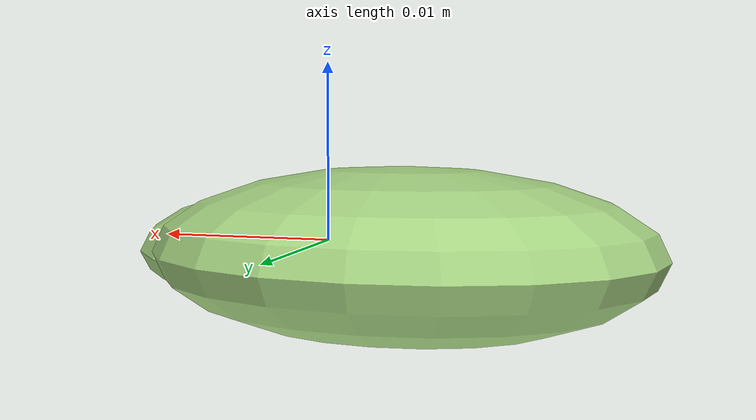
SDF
<?xml version="1.0" ?>
<!-- |    This document was autogenerated by xmacro from data/veggie_template/veggie_base.sdf.xacro  | -->
<!-- |    EDITING THIS FILE BY HAND IS NOT RECOMMENDED                                               | -->
<sdf version="1.8">
	<!-- Parameters -->
	<!-- Base -->
	<!-- Joint 0 -->
	<!-- Link 1 -->
	<!-- Joint 1 -->
	<!-- Link 2 -->
	<!-- Primitives -->
	<!-- All dimensions are half -->
	<!-- Object -->
	<model name="veggie">
		<!-- link0 -->
		<link name="link0">
			<inertial>
				<mass>0.0015842794731223643</mass>
				<inertia>
					<ixx>4.984983416626773e-08</ixx>
					<ixy>0</ixy>
					<ixz>0</ixz>
					<iyy>3.349218025198698e-08</iyy>
					<iyz>0</iyz>
					<izz>7.689290205404622e-08</izz>
				</inertia>
			</inertial>
			<visual name="link0_visual">
				<pose>0 0 0 0 0 0</pose>
				<geometry>
					<ellipsoid>
						<radii>0.009773683476874311 0.012130531267508165 0.0031900983951288027</radii>
					</ellipsoid>
				</geometry>
				<material>
					<ambient>0.659 0.839 0.514 1</ambient>
					<diffuse>0.659 0.839 0.514 1</diffuse>
					<specular>0 0 0 0</specular>
					<emissive>0 0 0 1</emissive>
				</material>
			</visual>
			<collision name="link0_collision">
				<pose>0 0 0 0 0 0 </pose>
				<geometry>
					<ellipsoid>
						<radii>0.009773683476874311 0.012130531267508165 0.0031900983951288027</radii>
					</ellipsoid>
				</geometry>
			</collision>
		</link>
		<!-- link1 -->
		<joint name="joint0" type="fixed">
			<pose relative_to="link0">-0.006452629364451038 0.007967205962030655 0.0005627089175590174 0.0 0.0 0.0</pose>
			<parent>link0</parent>
			<child>link1</child>
		</joint>
		<link name="link1">
			<pose relative_to="joint0">0 0 0 0 0 0</pose>
			<inertial>
				<mass>0.0019594819842348146</mass>
				<inertia>
					<ixx>3.984740055731503e-08</ixx>
					<ixy>0</ixy>
					<ixz>0</ixz>
					<iyy>6.610116166578226e-08</iyy>
					<iyz>0</iyz>
					<izz>9.258012640803727e-08</izz>
				</inertia>
			</inertial>
			<visual name="link1_visual">
				<pose>0 0 0 0 0 0</pose>
				<geometry>
					<ellipsoid>
						<radii>0.01231315990016885 0.009199039128649522 0.004129901222944884</radii>
					</ellipsoid>
				</geometry>
				<material>
					<ambient>0.659 0.839 0.514 1</ambient>
					<diffuse>0.659 0.839 0.514 1</diffuse>
					<specular>0 0 0 0</specular>
					<emissive>0 0 0 1</emissive>
				</material>
			</visual>
			<collision name="link1_collision">
				<pose>0 0 0 0 0 0 </pose>
				<geometry>
					<ellipsoid>
						<radii>0.01231315990016885 0.009199039128649522 0.004129901222944884</radii>
					</ellipsoid>
				</geometry>
			</collision>
		</link>
		<!-- link2 -->
	</model>
</sdf>
